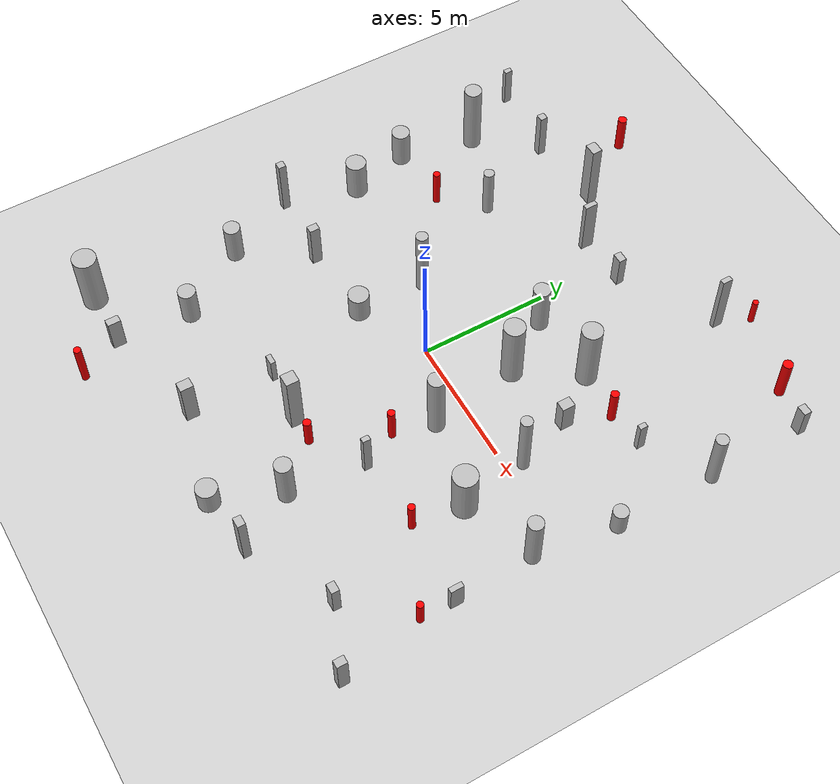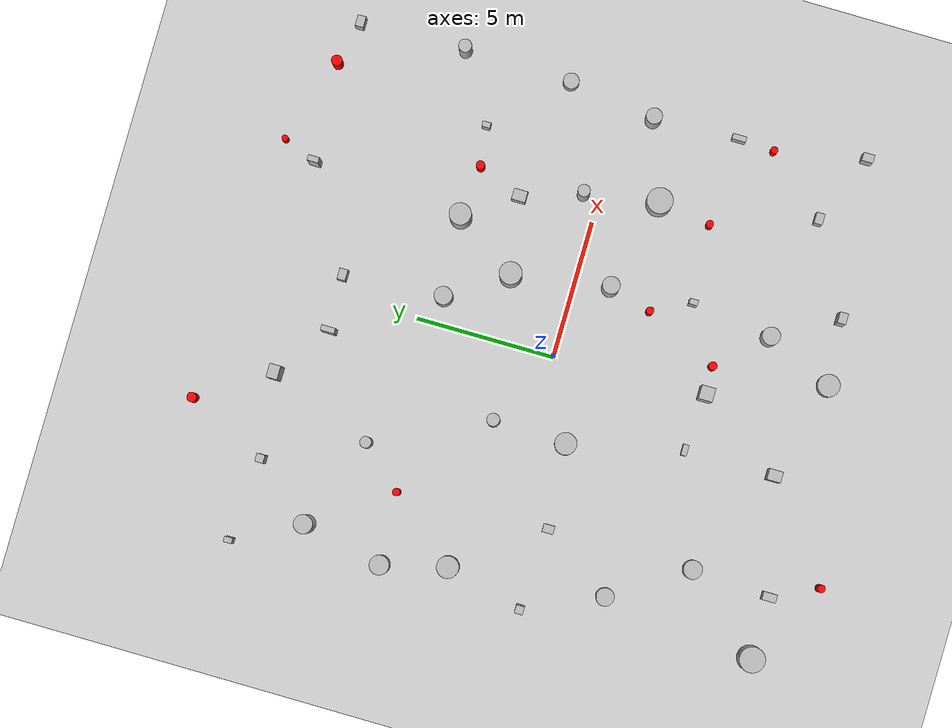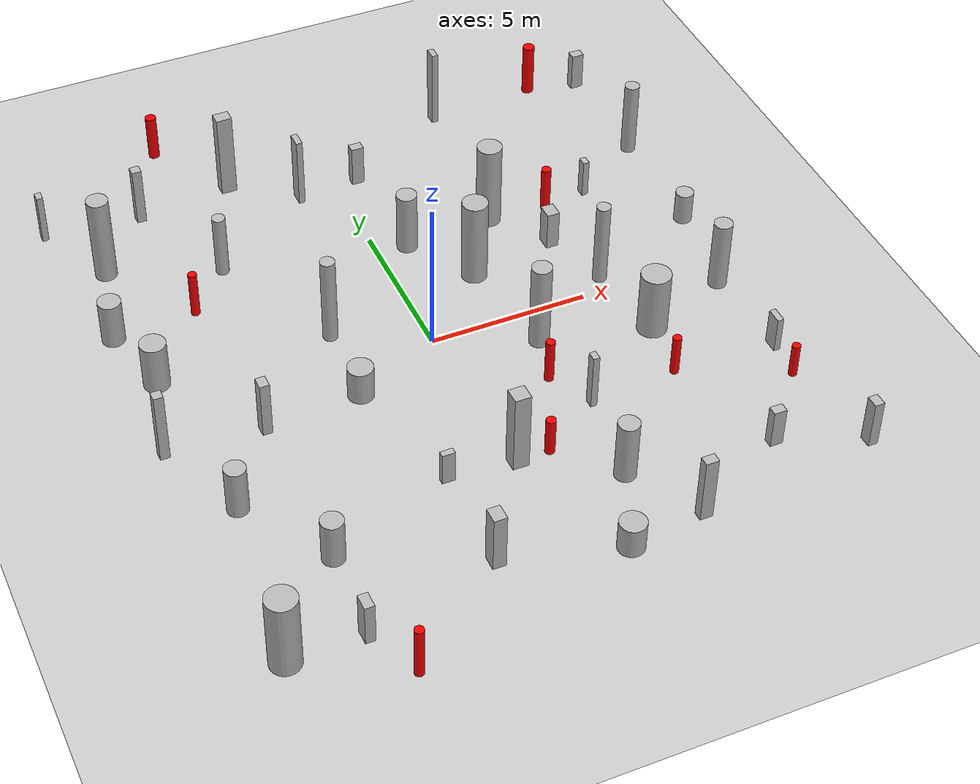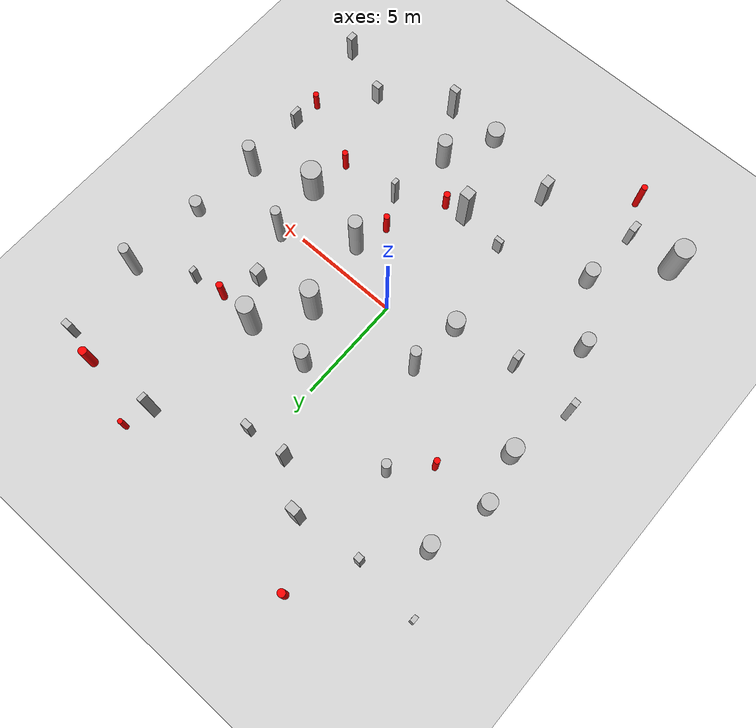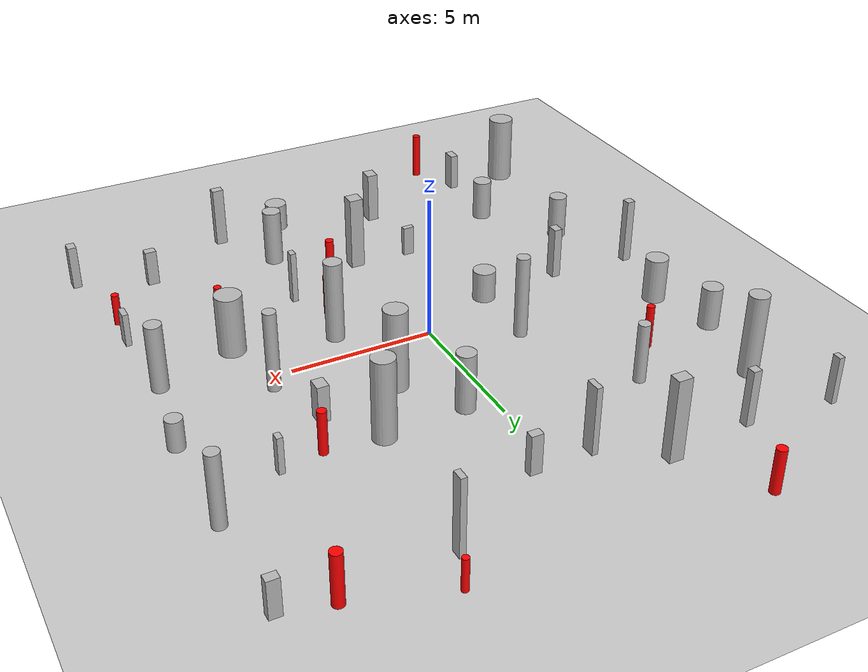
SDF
<sdf version="1.7">
 <world name="default">
  <light name="sun" type="directional">
   <pose>0 0 10 0 -0 0</pose>
   <diffuse>0.8 0.8 0.8 1</diffuse>
   <specular>0.2 0.2 0.2 1</specular>
   <attenuation>
    <range>1000</range>
    <constant>0.9</constant>
    <linear>0.01</linear>
    <quadratic>0.001</quadratic>
   </attenuation>
   <direction>-0.5 0.1 -0.9</direction>
   <spot><inner_angle>0</inner_angle><outer_angle>0</outer_angle><falloff>0</falloff></spot>
  </light>
  <model name="ground_plane">
   <static>1</static>
   <link name="link">
    <collision name="collision">
     <geometry><plane><normal>0 0 1</normal><size>100 100</size></plane></geometry>
     <surface>
      <contact><collide_bitmask>65535</collide_bitmask></contact>
      <friction><ode><mu>100</mu><mu2>50</mu2></ode></friction>
     </surface>
    </collision>
    <visual name="visual">
     <cast_shadows>0</cast_shadows>
     <geometry><plane><normal>0 0 1</normal><size>100 100</size></plane></geometry>
     <material>
      <script><uri>file://media/materials/scripts/gazebo.material</uri><name>Gazebo/Grey</name></script>
     </material>
    </visual>
   </link>
  </model>
  <gravity>0 0 -9.8</gravity>
  <magnetic_field>6e-06 2.3e-05 -4.2e-05</magnetic_field>
  <atmosphere type="adiabatic"/>
  <physics type="ode">
   <max_step_size>0.001</max_step_size>
   <real_time_factor>1</real_time_factor>
   <real_time_update_rate>1000</real_time_update_rate>
  </physics>
  <scene><ambient>0.4 0.4 0.4 1</ambient><background>0.7 0.7 0.7 1</background><shadows>1</shadows></scene>
  <spherical_coordinates>
   <surface_model>EARTH_WGS84</surface_model>
   <latitude_deg>0</latitude_deg>
   <longitude_deg>0</longitude_deg>
   <elevation>0</elevation>
   <heading_deg>0</heading_deg>
  </spherical_coordinates>
  <model name="cylinder_0_0.7_0.7_2.1">
   <static>true</static>
   <pose>0.9762700785464951 4.30378732744839 1.0448831829968968 0 0 0</pose>
   <link name="link">
    <visual name="visual">
     <geometry>
      <cylinder><radius>0.3270964398016714</radius><length>2.0897663659937935</length></cylinder>
     </geometry>
    </visual>
   </link>
  </model>
  <model name="cylinder_1_0.6_0.6_2.9">
   <static>true</static>
   <pose>2.917882261333123 -1.2482557747461502 1.4636627605010293 0 0 0</pose>
   <link name="link">
    <visual name="visual">
     <geometry>
      <cylinder><radius>0.3150324556477333</radius><length>2.9273255210020586</length></cylinder>
     </geometry>
    </visual>
   </link>
  </model>
  <model name="cylinder_2_0.4_0.4_2.9">
   <static>true</static>
   <pose>5.834500761653292 0.5778983950580887 1.425596638292661 0 0 0</pose>
   <link name="link">
    <visual name="visual">
     <geometry>
      <cylinder><radius>0.2213108174593661</radius><length>2.851193276585322</length></cylinder>
     </geometry>
    </visual>
   </link>
  </model>
  <model name="cylinder_3_0.9_0.9_2.6">
   <static>true</static>
   <pose>-8.257414005969185 -9.595632051193485 1.2781567509498504 0 0 0</pose>
   <link name="link">
    <visual name="visual">
     <geometry>
      <cylinder><radius>0.46100364447404574</radius><length>2.5563135018997007</length></cylinder>
     </geometry>
    </visual>
   </link>
  </model>
  <model name="cylinder_4_0.5_0.5_2.6">
   <static>true</static>
   <pose>9.572366844655281 5.983171284334471 1.2805291762864555 0 0 0</pose>
   <link name="link">
    <visual name="visual">
     <geometry>
      <cylinder><radius>0.23548232776067998</radius><length>2.561058352572911</length></cylinder>
     </geometry>
    </visual>
   </link>
  </model>
  <model name="cylinder_5_0.6_0.6_2.0">
   <static>true</static>
   <pose>2.798420426550477 -7.132934251819072 1.0218483217500718 0 0 0</pose>
   <link name="link">
    <visual name="visual">
     <geometry>
      <cylinder><radius>0.3243985819971571</radius><length>2.0436966435001436</length></cylinder>
     </geometry>
    </visual>
   </link>
  </model>
  <model name="cylinder_6_0.4_0.4_2.1">
   <static>true</static>
   <pose>-4.70888775790746 5.484673788684333 1.0684339488686485 0 0 0</pose>
   <link name="link">
    <visual name="visual">
     <geometry>
      <cylinder><radius>0.20563694013090655</radius><length>2.136867897737297</length></cylinder>
     </geometry>
    </visual>
   </link>
  </model>
  <model name="cylinder_7_0.8_0.8_2.9">
   <static>true</static>
   <pose>2.352709941517542 2.2419144544484286 1.4437480785146242 0 0 0</pose>
   <link name="link">
    <visual name="visual">
     <geometry>
      <cylinder><radius>0.404546089731045</radius><length>2.8874961570292483</length></cylinder>
     </geometry>
    </visual>
   </link>
  </model>
  <model name="cylinder_8_0.8_0.8_1.1">
   <static>true</static>
   <pose>-2.80984198852428 -1.259360924013171 0.5602254716292698 0 0 0</pose>
   <link name="link">
    <visual name="visual">
     <geometry>
      <cylinder><radius>0.4000300146337003</radius><length>1.1204509432585397</length></cylinder>
     </geometry>
    </visual>
   </link>
  </model>
  <model name="cylinder_9_0.5_0.5_3.0">
   <static>true</static>
   <pose>-2.725784581147548 1.4039354083575937 1.4883738380592262 0 0 0</pose>
   <link name="link">
    <visual name="visual">
     <geometry>
      <cylinder><radius>0.23061344322440844</radius><length>2.9767476761184524</length></cylinder>
     </geometry>
    </visual>
   </link>
  </model>
  <model name="cylinder_10_0.7_0.7_1.5">
   <static>true</static>
   <pose>-5.822464878103306 -6.773809642300074 0.7532916025397821 0 0 0</pose>
   <link name="link">
    <visual name="visual">
     <geometry>
      <cylinder><radius>0.3398932318568919</radius><length>1.5065832050795642</length></cylinder>
     </geometry>
    </visual>
   </link>
  </model>
  <model name="cylinder_11_0.7_0.7_3.0">
   <static>true</static>
   <pose>-8.057974484138775 6.758898149976076 1.4764594650133958 0 0 0</pose>
   <link name="link">
    <visual name="visual">
     <geometry>
      <cylinder><radius>0.3405953604943105</radius><length>2.9529189300267915</length></cylinder>
     </geometry>
    </visual>
   </link>
  </model>
  <model name="cylinder_12_0.6_0.6_1.1">
   <static>true</static>
   <pose>9.535221763806742 2.0969103949009202 0.5391877922543207 0 0 0</pose>
   <link name="link">
    <visual name="visual">
     <geometry>
      <cylinder><radius>0.2848420887729229</radius><length>1.0783755845086413</length></cylinder>
     </geometry>
    </visual>
   </link>
  </model>
  <model name="cylinder_13_0.6_0.6_1.6">
   <static>true</static>
   <pose>-7.596068775736622 -4.077196049557101 0.817983179393976 0 0 0</pose>
   <link name="link">
    <visual name="visual">
     <geometry><cylinder><radius>0.324278898354401</radius><length>1.635966358787952</length></cylinder></geometry>
    </visual>
   </link>
  </model>
  <model name="cylinder_14_0.7_0.7_1.5">
   <static>true</static>
   <pose>-8.717050073024312 3.849442387400398 0.7653894909394454 0 0 0</pose>
   <link name="link">
    <visual name="visual">
     <geometry>
      <cylinder><radius>0.3569744160400099</radius><length>1.5307789818788908</length></cylinder>
     </geometry>
    </visual>
   </link>
  </model>
  <model name="cylinder_15_0.8_0.8_1.6">
   <static>true</static>
   <pose>-8.121189784831166 1.5189299111235854 0.8185689524513237 0 0 0</pose>
   <link name="link">
    <visual name="visual">
     <geometry>
      <cylinder><radius>0.4002231139891045</radius><length>1.6371379049026473</length></cylinder>
     </geometry>
    </visual>
   </link>
  </model>
  <model name="cylinder_16_0.8_0.8_1.0">
   <static>true</static>
   <pose>1.7302586962016626 -9.597849076250128 0.5046954761925471 0 0 0</pose>
   <link name="link">
    <visual name="visual">
     <geometry>
      <cylinder><radius>0.4033449610388691</radius><length>1.0093909523850941</length></cylinder>
     </geometry>
    </visual>
   </link>
  </model>
  <model name="cylinder_17_0.6_0.6_2.4">
   <static>true</static>
   <pose>9.054980230339702 -1.0574924276474533 1.1994792753175043 0 0 0</pose>
   <link name="link">
    <visual name="visual">
     <geometry>
      <cylinder><radius>0.2892310852565401</radius><length>2.3989585506350086</length></cylinder>
     </geometry>
    </visual>
   </link>
  </model>
  <model name="cylinder_18_0.9_0.9_2.2">
   <static>true</static>
   <pose>6.275956394049544 -2.0698851830603076 1.0812728726358587 0 0 0</pose>
   <link name="link">
    <visual name="visual">
     <geometry>
      <cylinder><radius>0.4645206085564558</radius><length>2.1625457452717174</length></cylinder>
     </geometry>
    </visual>
   </link>
  </model>
  <model name="cylinder_19_0.8_0.8_2.9">
   <static>true</static>
   <pose>3.850631801555318 4.50508559639281 1.4560836347232238 0 0 0</pose>
   <link name="link">
    <visual name="visual">
     <geometry>
      <cylinder><radius>0.3931970597688912</radius><length>2.9121672694464475</length></cylinder>
     </geometry>
    </visual>
   </link>
  </model>
  <model name="box_0_0.2_0.3_1.9">
   <static>true</static>
   <pose>3.2034707498537003 -4.198447855791119 0.9287687009457661 0 0 0</pose>
   <link name="link">
    <visual name="visual"><geometry><box><size>0.2 0.3 1.9</size></box></geometry></visual>
   </link>
  </model>
  <model name="box_1_0.2_0.5_2.4">
   <static>true</static>
   <pose>-1.2827014946874638 7.838467100313441 1.2038885835403663 0 0 0</pose>
   <link name="link">
    <visual name="visual"><geometry><box><size>0.2 0.5 2.4</size></box></geometry></visual>
   </link>
  </model>
  <model name="box_2_0.2_0.4_2.7">
   <static>true</static>
   <pose>4.2848259909822275 9.976940131357331 1.3681260573682144 0 0 0</pose>
   <link name="link">
    <visual name="visual"><geometry><box><size>0.2 0.4 2.7</size></box></geometry></visual>
   </link>
  </model>
  <model name="box_3_0.4_0.5_1.9">
   <static>true</static>
   <pose>-1.8563340554800067 -8.61666009089724 0.9535426826780689 0 0 0</pose>
   <link name="link">
    <visual name="visual"><geometry><box><size>0.4 0.5 1.9</size></box></geometry></visual>
   </link>
  </model>
  <model name="box_4_0.3_0.5_1.4">
   <static>true</static>
   <pose>-6.000069502071998 -9.62956411078772 0.7239246880603801 0 0 0</pose>
   <link name="link">
    <visual name="visual"><geometry><box><size>0.3 0.5 1.4</size></box></geometry></visual>
   </link>
  </model>
  <model name="box_5_0.4_0.3_2.2">
   <static>true</static>
   <pose>4.088288038470655 -9.363221409373843 1.1214784014997634 0 0 0</pose>
   <link name="link">
    <visual name="visual"><geometry><box><size>0.4 0.3 2.2</size></box></geometry></visual>
   </link>
  </model>
  <model name="box_6_0.3_0.3_2.0">
   <static>true</static>
   <pose>-6.276139882393277 8.887447799678672 0.9904588086175671 0 0 0</pose>
   <link name="link">
    <visual name="visual"><geometry><box><size>0.3 0.3 2.0</size></box></geometry></visual>
   </link>
  </model>
  <model name="box_7_0.3_0.3_2.4">
   <static>true</static>
   <pose>-8.839416793522489 -1.3116674888375854 1.1963434888154594 0 0 0</pose>
   <link name="link">
    <visual name="visual"><geometry><box><size>0.3 0.3 2.4</size></box></geometry></visual>
   </link>
  </model>
  <model name="box_8_0.4_0.3_1.4">
   <static>true</static>
   <pose>0.731584222174444 7.933425860806842 0.7168969843984739 0 0 0</pose>
   <link name="link">
    <visual name="visual"><geometry><box><size>0.4 0.3 1.4</size></box></geometry></visual>
   </link>
  </model>
  <model name="box_9_0.3_0.4_1.9">
   <static>true</static>
   <pose>-5.850598491177812 -1.5062906249698749 0.9635754243648107 0 0 0</pose>
   <link name="link">
    <visual name="visual"><geometry><box><size>0.3 0.4 1.9</size></box></geometry></visual>
   </link>
  </model>
  <model name="box_10_0.4_0.3_1.3">
   <static>true</static>
   <pose>7.277112118464629 -7.649362880759338 0.6320681063451533 0 0 0</pose>
   <link name="link">
    <visual name="visual"><geometry><box><size>0.4 0.3 1.3</size></box></geometry></visual>
   </link>
  </model>
  <model name="box_11_0.2_0.5_1.2">
   <static>true</static>
   <pose>9.23872757094458 -4.157049464149023 0.6002939422654978 0 0 0</pose>
   <link name="link">
    <visual name="visual"><geometry><box><size>0.2 0.5 1.2</size></box></geometry></visual>
   </link>
  </model>
  <model name="box_12_0.5_0.4_2.9">
   <static>true</static>
   <pose>-3.236820963263087 9.231403090829971 1.4493188224156814 0 0 0</pose>
   <link name="link">
    <visual name="visual"><geometry><box><size>0.5 0.4 2.9</size></box></geometry></visual>
   </link>
  </model>
  <model name="box_13_0.5_0.5_2.7">
   <static>true</static>
   <pose>0.22637965092912005 -5.513659420505215 1.3621915174216834 0 0 0</pose>
   <link name="link">
    <visual name="visual"><geometry><box><size>0.5 0.5 2.7</size></box></geometry></visual>
   </link>
  </model>
  <model name="box_14_0.4_0.2_1.1">
   <static>true</static>
   <pose>-1.8551765717238524 -5.355317156581146 0.5534271817868253 0 0 0</pose>
   <link name="link">
    <visual name="visual"><geometry><box><size>0.4 0.2 1.1</size></box></geometry></visual>
   </link>
  </model>
  <model name="box_15_0.2_0.3_1.3">
   <static>true</static>
   <pose>7.211023476575875 4.540885254226566 0.6314827992911276 0 0 0</pose>
   <link name="link">
    <visual name="visual"><geometry><box><size>0.2 0.3 1.3</size></box></geometry></visual>
   </link>
  </model>
  <model name="box_16_0.4_0.5_1.3">
   <static>true</static>
   <pose>5.135572854737784 2.721221108942826 0.6605388224852564 0 0 0</pose>
   <link name="link">
    <visual name="visual"><geometry><box><size>0.4 0.5 1.3</size></box></geometry></visual>
   </link>
  </model>
  <model name="box_17_0.2_0.3_1.7">
   <static>true</static>
   <pose>-9.333907469066077 9.17965443726947 0.8567068904025429 0 0 0</pose>
   <link name="link">
    <visual name="visual"><geometry><box><size>0.2 0.3 1.7</size></box></geometry></visual>
   </link>
  </model>
  <model name="box_18_0.4_0.3_1.3">
   <static>true</static>
   <pose>9.485124256361004 9.806900031217879 0.6629544260466054 0 0 0</pose>
   <link name="link">
    <visual name="visual"><geometry><box><size>0.4 0.3 1.3</size></box></geometry></visual>
   </link>
  </model>
  <model name="box_19_0.3_0.4_1.6">
   <static>true</static>
   <pose>9.78819554568863 -8.693915856964395 0.7883984973314939 0 0 0</pose>
   <link name="link">
    <visual name="visual"><geometry><box><size>0.3 0.4 1.6</size></box></geometry></visual>
   </link>
  </model>
  <model name="dynamic_cylinder_0_0.3_0.3_1.6">
   <static>true</static>
   <pose>-6.094483560216853 3.9806188214205047 0.7826298825091915 0 0 0</pose>
   <link name="link">
    <visual name="visual">
     <geometry>
      <cylinder><radius>0.13605455604858924</radius><length>1.565259765018383</length></cylinder>
     </geometry>
     <material><ambient>1 0 0 1</ambient><diffuse>1 0 0 1</diffuse><specular>0.5 0.5 0.5 1</specular></material>
    </visual>
   </link>
   <plugin name="obstacle_motion" filename="libobstaclePathPlugin.so">
    <orientation>false</orientation>
    <loop>0</loop>
    <velocity>0.3829713738667128</velocity>
    <path>
     <waypoint>-6.094483560216853 3.9806188214205047 0.7826298825091915</waypoint>
     <waypoint>-1.8218642775396177 1.3125074078740546 0.7826298825091915</waypoint>
    </path>
   </plugin>
  </model>
  <model name="dynamic_cylinder_1_0.4_0.4_1.8">
   <static>true</static>
   <pose>7.887765949337705 10.199205886876612 0.894196571057319 0 0 0</pose>
   <link name="link">
    <visual name="visual">
     <geometry>
      <cylinder><radius>0.1904948345549927</radius><length>1.788393142114638</length></cylinder>
     </geometry>
     <material><ambient>1 0 0 1</ambient><diffuse>1 0 0 1</diffuse><specular>0.5 0.5 0.5 1</specular></material>
    </visual>
   </link>
   <plugin name="obstacle_motion" filename="libobstaclePathPlugin.so">
    <orientation>false</orientation>
    <loop>0</loop>
    <velocity>0.4937943409340704</velocity>
    <path>
     <waypoint>7.887765949337705 10.199205886876612 0.894196571057319</waypoint>
     <waypoint>-6.416952172085628 -3.6355351321784823 0.894196571057319</waypoint>
    </path>
   </plugin>
  </model>
  <model name="dynamic_cylinder_2_0.3_0.3_1.6">
   <static>true</static>
   <pose>-4.882649638463283 11.808269841947379 0.7759073060311001 0 0 0</pose>
   <link name="link">
    <visual name="visual">
     <geometry>
      <cylinder><radius>0.17307090991274762</radius><length>1.5518146120622003</length></cylinder>
     </geometry>
     <material><ambient>1 0 0 1</ambient><diffuse>1 0 0 1</diffuse><specular>0.5 0.5 0.5 1</specular></material>
    </visual>
   </link>
   <plugin name="obstacle_motion" filename="libobstaclePathPlugin.so">
    <orientation>false</orientation>
    <loop>0</loop>
    <velocity>0.3116712717961177</velocity>
    <path>
     <waypoint>-4.882649638463283 11.808269841947379 0.7759073060311001</waypoint>
     <waypoint>-9.458252282826427 10.82286266532946 0.7759073060311001</waypoint>
    </path>
   </plugin>
  </model>
  <model name="dynamic_cylinder_3_0.3_0.3_1.1">
   <static>true</static>
   <pose>9.16128509601215 -5.4615145088169 0.5687412396190572 0 0 0</pose>
   <link name="link">
    <visual name="visual">
     <geometry>
      <cylinder><radius>0.13044684073773197</radius><length>1.1374824792381144</length></cylinder>
     </geometry>
     <material><ambient>1 0 0 1</ambient><diffuse>1 0 0 1</diffuse><specular>0.5 0.5 0.5 1</specular></material>
    </visual>
   </link>
   <plugin name="obstacle_motion" filename="libobstaclePathPlugin.so">
    <orientation>false</orientation>
    <loop>0</loop>
    <velocity>0.38985832973754764</velocity>
    <path>
     <waypoint>9.16128509601215 -5.4615145088169 0.5687412396190572</waypoint>
     <waypoint>-3.0168916002980133 5.970918180963196 0.5687412396190572</waypoint>
    </path>
   </plugin>
  </model>
  <model name="dynamic_cylinder_4_0.2_0.2_1.1">
   <static>true</static>
   <pose>4.789801445394033 11.23117359850145 0.5609418822750922 0 0 0</pose>
   <link name="link">
    <visual name="visual">
     <geometry>
      <cylinder><radius>0.11312893284732561</radius><length>1.1218837645501845</length></cylinder>
     </geometry>
     <material><ambient>1 0 0 1</ambient><diffuse>1 0 0 1</diffuse><specular>0.5 0.5 0.5 1</specular></material>
    </visual>
   </link>
   <plugin name="obstacle_motion" filename="libobstaclePathPlugin.so">
    <orientation>false</orientation>
    <loop>0</loop>
    <velocity>0.3834972749592024</velocity>
    <path>
     <waypoint>4.789801445394033 11.23117359850145 0.5609418822750922</waypoint>
     <waypoint>-1.1562796159257687 -10.299125323578998 0.5609418822750922</waypoint>
    </path>
   </plugin>
  </model>
  <model name="dynamic_cylinder_5_0.3_0.3_1.5">
   <static>true</static>
   <pose>2.498827296501169 -2.812606580211501 0.7368921675047347 0 0 0</pose>
   <link name="link">
    <visual name="visual">
     <geometry>
      <cylinder><radius>0.14067333458357484</radius><length>1.4737843350094695</length></cylinder>
     </geometry>
     <material><ambient>1 0 0 1</ambient><diffuse>1 0 0 1</diffuse><specular>0.5 0.5 0.5 1</specular></material>
    </visual>
   </link>
   <plugin name="obstacle_motion" filename="libobstaclePathPlugin.so">
    <orientation>false</orientation>
    <loop>0</loop>
    <velocity>0.47935223164488194</velocity>
    <path>
     <waypoint>2.498827296501169 -2.812606580211501 0.7368921675047347</waypoint>
     <waypoint>11.227072123164046 1.125237640066132 0.7368921675047347</waypoint>
    </path>
   </plugin>
  </model>
  <model name="dynamic_cylinder_6_0.3_0.3_1.2">
   <static>true</static>
   <pose>1.2498786406072995 -5.480333577452499 0.6241523303919245 0 0 0</pose>
   <link name="link">
    <visual name="visual">
     <geometry>
      <cylinder><radius>0.15249704422542643</radius><length>1.248304660783849</length></cylinder>
     </geometry>
     <material><ambient>1 0 0 1</ambient><diffuse>1 0 0 1</diffuse><specular>0.5 0.5 0.5 1</specular></material>
    </visual>
   </link>
   <plugin name="obstacle_motion" filename="libobstaclePathPlugin.so">
    <orientation>false</orientation>
    <loop>0</loop>
    <velocity>0.3746069727761495</velocity>
    <path>
     <waypoint>1.2498786406072995 -5.480333577452499 0.6241523303919245</waypoint>
     <waypoint>-2.3588751508896326 -6.0380768380086955 0.6241523303919245</waypoint>
    </path>
   </plugin>
  </model>
  <model name="dynamic_cylinder_7_0.3_0.3_1.4">
   <static>true</static>
   <pose>6.014280550295702 -3.995820821009392 0.6784542050636808 0 0 0</pose>
   <link name="link">
    <visual name="visual">
     <geometry>
      <cylinder><radius>0.1348475989033497</radius><length>1.3569084101273616</length></cylinder>
     </geometry>
     <material><ambient>1 0 0 1</ambient><diffuse>1 0 0 1</diffuse><specular>0.5 0.5 0.5 1</specular></material>
    </visual>
   </link>
   <plugin name="obstacle_motion" filename="libobstaclePathPlugin.so">
    <orientation>false</orientation>
    <loop>0</loop>
    <velocity>0.3209255777484948</velocity>
    <path>
     <waypoint>6.014280550295702 -3.995820821009392 0.6784542050636808</waypoint>
     <waypoint>8.695645124061656 -10.831432896587316 0.6784542050636808</waypoint>
    </path>
   </plugin>
  </model>
  <model name="dynamic_cylinder_8_0.3_0.3_1.5">
   <static>true</static>
   <pose>5.762340614824382 4.332347547427823 0.7704969929109852 0 0 0</pose>
   <link name="link">
    <visual name="visual">
     <geometry>
      <cylinder><radius>0.15436780538280953</radius><length>1.5409939858219703</length></cylinder>
     </geometry>
     <material><ambient>1 0 0 1</ambient><diffuse>1 0 0 1</diffuse><specular>0.5 0.5 0.5 1</specular></material>
    </visual>
   </link>
   <plugin name="obstacle_motion" filename="libobstaclePathPlugin.so">
    <orientation>false</orientation>
    <loop>0</loop>
    <velocity>0.4758469526062654</velocity>
    <path>
     <waypoint>5.762340614824382 4.332347547427823 0.7704969929109852</waypoint>
     <waypoint>5.052681665336294 -7.081831512967158 0.7704969929109852</waypoint>
    </path>
   </plugin>
  </model>
  <model name="dynamic_cylinder_9_0.3_0.3_1.7">
   <static>true</static>
   <pose>-5.215208377307121 -11.274353807856418 0.8688445847068773 0 0 0</pose>
   <link name="link">
    <visual name="visual">
     <geometry>
      <cylinder><radius>0.14059423219682837</radius><length>1.7376891694137546</length></cylinder>
     </geometry>
     <material><ambient>1 0 0 1</ambient><diffuse>1 0 0 1</diffuse><specular>0.5 0.5 0.5 1</specular></material>
    </visual>
   </link>
   <plugin name="obstacle_motion" filename="libobstaclePathPlugin.so">
    <orientation>false</orientation>
    <loop>0</loop>
    <velocity>0.31789890900658</velocity>
    <path>
     <waypoint>-5.215208377307121 -11.274353807856418 0.8688445847068773</waypoint>
     <waypoint>-11.81078151579743 -3.0557023242961066 0.8688445847068773</waypoint>
    </path>
   </plugin>
  </model>
 </world>
</sdf>
